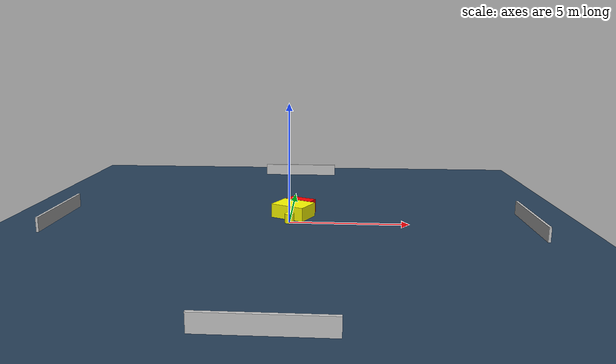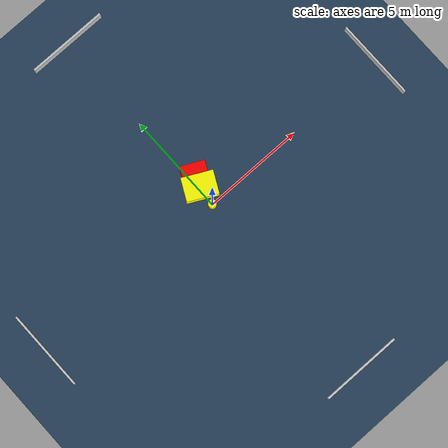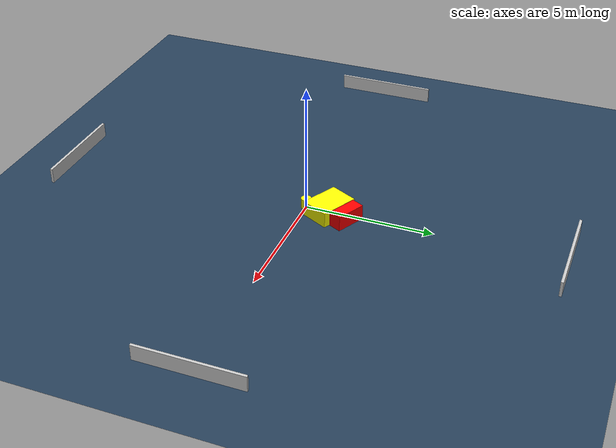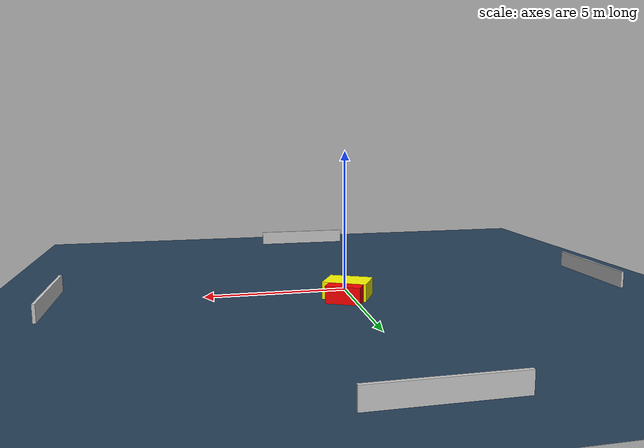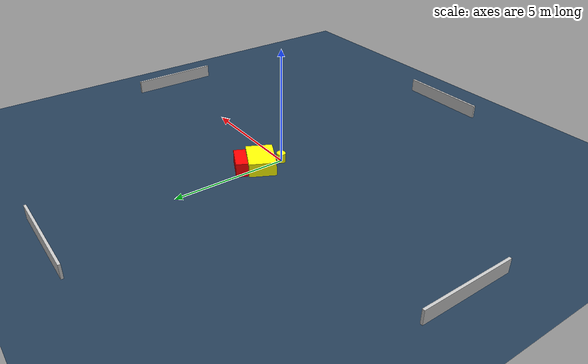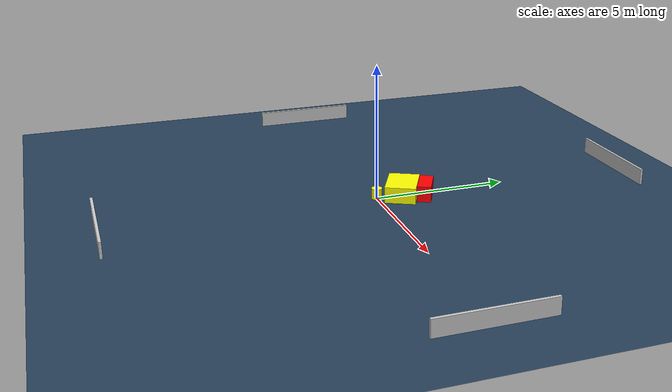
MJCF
<?xml version="1.0" ?>
<mujoco model="generated_environment">
  <option timestep="0.01" integrator="RK4" cone="elliptic"/>
  <default>
    <geom density="1"/>
  </default>
  <asset>
    <texture builtin="gradient" height="3072" name="skybox" rgb1="0.3 0.5 0.7" rgb2="0 0 0" type="skybox" width="512"/>
    <texture builtin="checker" height="300" name="groundplane" rgb1="0.2 0.3 0.4" rgb2="0.1 0.2 0.3" type="2d" width="300"/>
    <material name="groundplane" reflectance="0.2" texrepeat="5 5" texture="groundplane"/>
  </asset>
  <worldbody>
    <light dir="0 0 -1" directional="true" pos="0 0 1.5"/>
    <geom condim="3" friction="0.5 0.005 0.001" material="groundplane" name="floor" pos="0 0 0" size="0 0 0.05" type="plane"/>
    <body name="walls">
      <geom name="wall_1" condim="4" pos="-10.0 0.0 0.3" rgba="0.800000011920929 0.800000011920929 0.800000011920929 1.0" size="0.05 2.0 0.3" type="box"/>
      <geom name="wall_2" condim="4" pos="10.0 0.0 0.3" rgba="0.800000011920929 0.800000011920929 0.800000011920929 1.0" size="0.05 2.0 0.3" type="box"/>
      <geom name="wall_3" condim="4" pos="0.0 -10.0 0.3" rgba="0.800000011920929 0.800000011920929 0.800000011920929 1.0" size="2.0 0.05 0.3" type="box"/>
      <geom name="wall_4" condim="4" pos="0.0 10.0 0.3" rgba="0.800000011920929 0.800000011920929 0.800000011920929 1.0" size="2.0 0.05 0.3" type="box"/>
    </body>
    <body name="robot">
      <joint name="joint_x" type="slide" pos="0 0 0" axis="1 0 0"/>
      <joint name="joint_y" type="slide" pos="0 0 0" axis="0 1 0"/>
      <geom name="robot" type="cylinder" pos="0.0 0.0 0.2" size="0.2 0.2 0.0" mass="5.0" friction="1.0 0.005 0.0001" condim="4" rgba="1.0 1.0 0.0 1.0"/>
    </body>
    <body name="obstacle_1_movable">
      <geom name="obstacle_1_movable" condim="4" pos="0.1059169448204195 0.9637277964562937 0.3" euler="0 0 63.09444659454846" friction="0.0 0.005 0.001" rgba="1.0 1.0 0.0 1.0" size="0.5718540953551288 0.7693117030034 0.3" type="box" mass="0.1"/>
      <joint type="free"/>
    </body>
    <body name="obstacle_2_static">
      <geom name="obstacle_2_static" condim="4" pos="0.41314041686618014 1.7573413654825474 0.3" euler="0 0 333.61404532602864" friction="0.0 0.005 0.001" rgba="1.0 0.0 0.0 1.0" size="0.6026344725767443 0.255482740837654 0.3" type="box"/>
    </body>
  </worldbody>
  <actuator>
    <motor name="actuator_x" joint="joint_x" gear="1" ctrlrange="-1 1"/>
    <motor name="actuator_y" joint="joint_y" gear="1" ctrlrange="-1 1"/>
  </actuator>
</mujoco>
